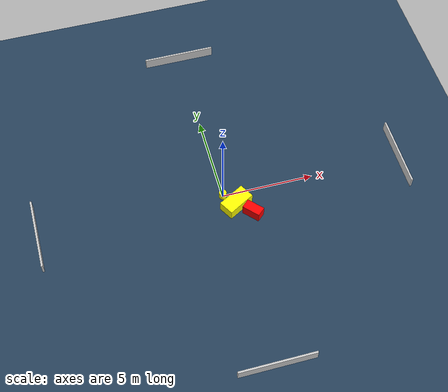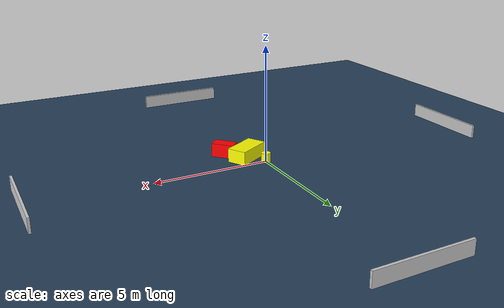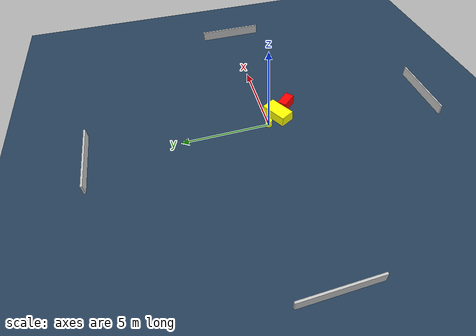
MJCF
<?xml version="1.0" ?>
<mujoco model="generated_environment">
  <option timestep="0.01" integrator="RK4" cone="elliptic"/>
  <default>
    <geom density="1"/>
  </default>
  <asset>
    <texture builtin="gradient" height="3072" name="skybox" rgb1="0.3 0.5 0.7" rgb2="0 0 0" type="skybox" width="512"/>
    <texture builtin="checker" height="300" name="groundplane" rgb1="0.2 0.3 0.4" rgb2="0.1 0.2 0.3" type="2d" width="300"/>
    <material name="groundplane" reflectance="0.2" texrepeat="5 5" texture="groundplane"/>
  </asset>
  <worldbody>
    <light dir="0 0 -1" directional="true" pos="0 0 1.5"/>
    <geom condim="3" friction="0.5 0.005 0.001" material="groundplane" name="floor" pos="0 0 0" size="0 0 0.05" type="plane"/>
    <body name="walls">
      <geom name="wall_1" condim="4" pos="-10.0 0.0 0.3" rgba="0.800000011920929 0.800000011920929 0.800000011920929 1.0" size="0.05 2.0 0.3" type="box"/>
      <geom name="wall_2" condim="4" pos="10.0 0.0 0.3" rgba="0.800000011920929 0.800000011920929 0.800000011920929 1.0" size="0.05 2.0 0.3" type="box"/>
      <geom name="wall_3" condim="4" pos="0.0 -10.0 0.3" rgba="0.800000011920929 0.800000011920929 0.800000011920929 1.0" size="2.0 0.05 0.3" type="box"/>
      <geom name="wall_4" condim="4" pos="0.0 10.0 0.3" rgba="0.800000011920929 0.800000011920929 0.800000011920929 1.0" size="2.0 0.05 0.3" type="box"/>
    </body>
    <body name="robot">
      <joint name="joint_x" type="slide" pos="0 0 0" axis="1 0 0"/>
      <joint name="joint_y" type="slide" pos="0 0 0" axis="0 1 0"/>
      <geom name="robot" type="cylinder" pos="0.0 0.0 0.2" size="0.2 0.2 0.0" mass="5.0" friction="1.0 0.005 0.0001" condim="4" rgba="1.0 1.0 0.0 1.0"/>
    </body>
    <body name="obstacle_1_movable">
      <geom name="obstacle_1_movable" condim="4" pos="0.5495522044092164 -0.7148858120305377 0.3" euler="0 0 29.523080807365766" friction="0.0 0.005 0.001" rgba="1.0 1.0 0.0 1.0" size="0.7852499096765122 0.4245555887652824 0.3" type="box" mass="0.1"/>
      <joint type="free"/>
    </body>
    <body name="obstacle_2_static">
      <geom name="obstacle_2_static" condim="4" pos="1.2743030243931834 -1.441840968354516 0.3" euler="0 0 312.37613163104385" friction="0.0 0.005 0.001" rgba="1.0 0.0 0.0 1.0" size="0.4981097108440438 0.26840328288784765 0.3" type="box"/>
    </body>
  </worldbody>
  <actuator>
    <motor name="actuator_x" joint="joint_x" gear="1" ctrlrange="-1 1"/>
    <motor name="actuator_y" joint="joint_y" gear="1" ctrlrange="-1 1"/>
  </actuator>
</mujoco>
